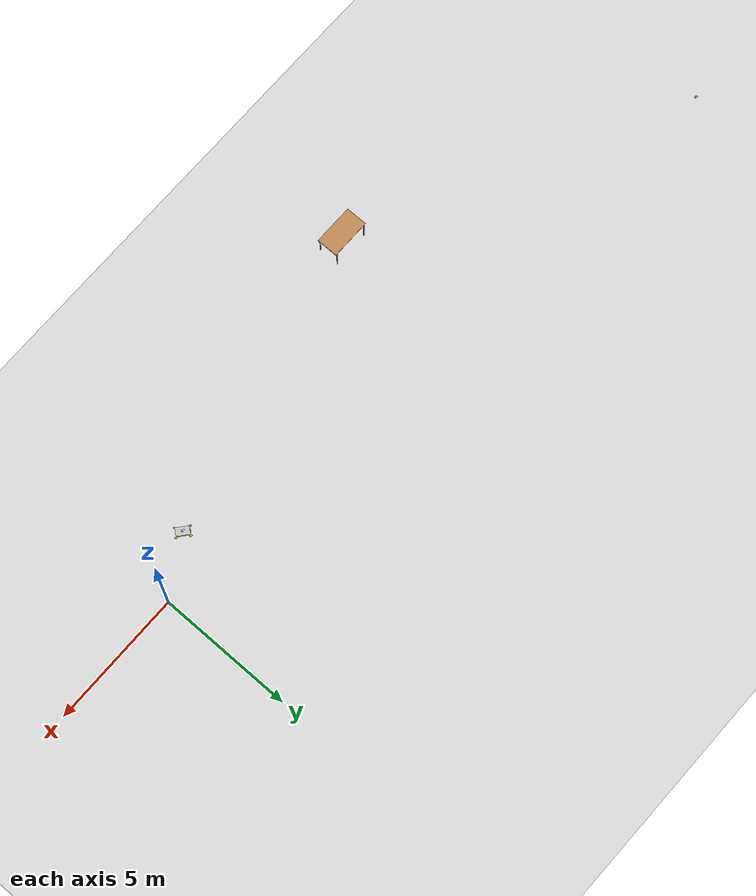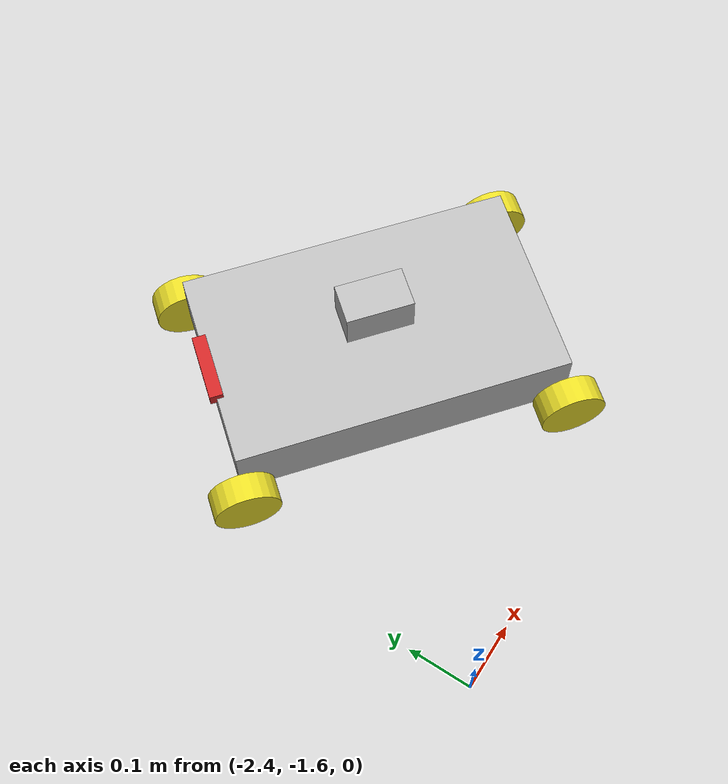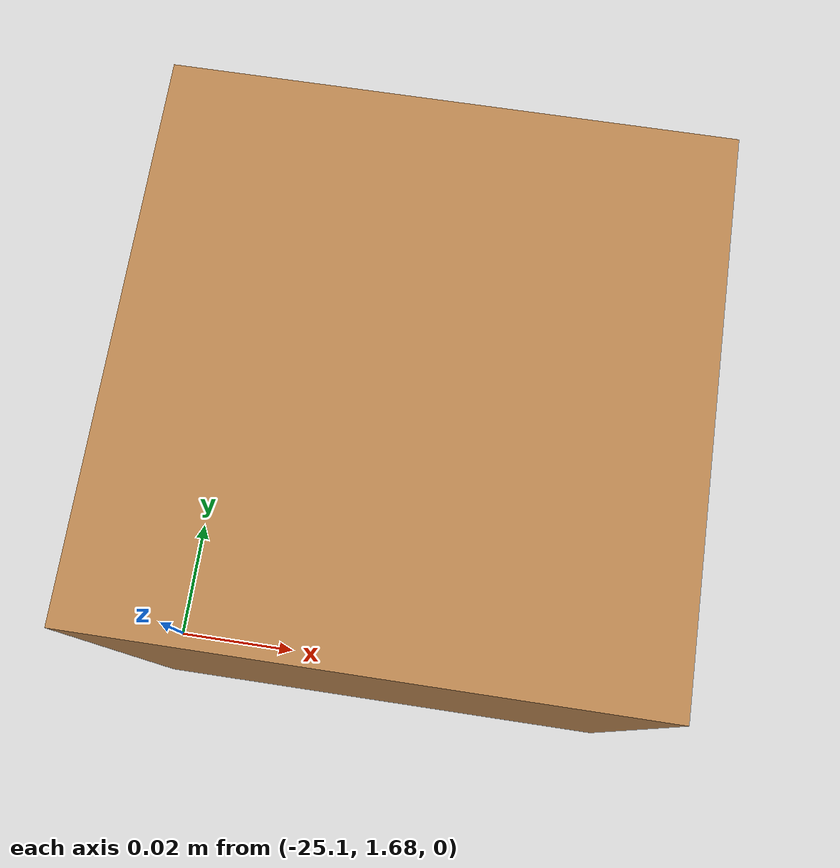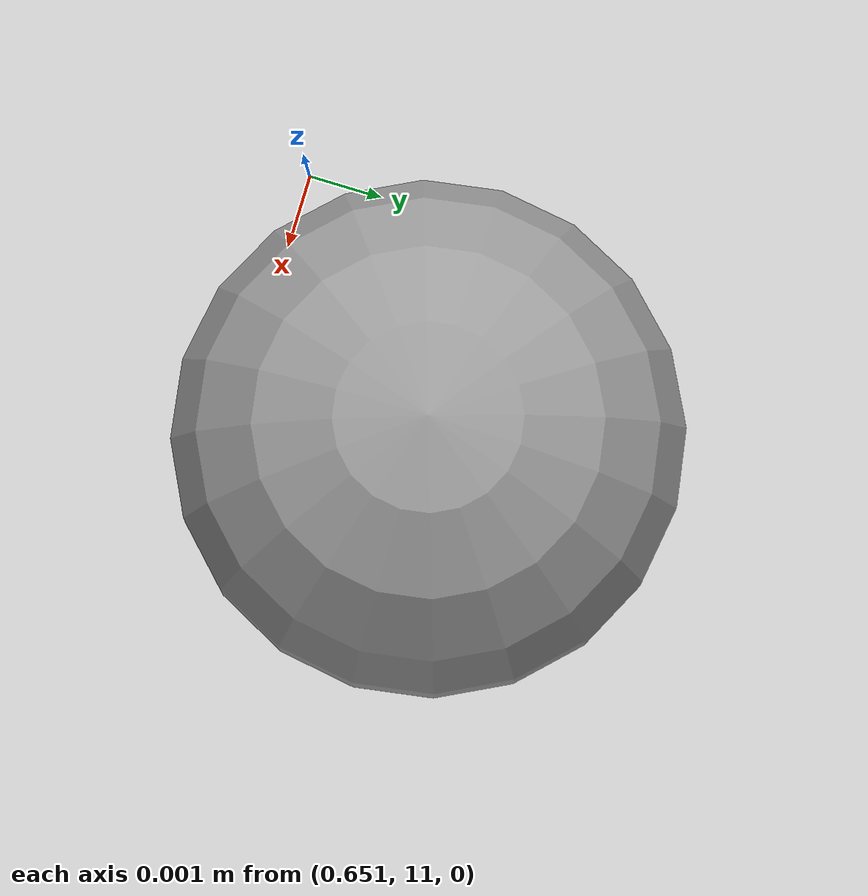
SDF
<sdf version="1.7">
 <world name="default">
  <light name="sun" type="directional">
   <pose>0 0 10 0 -0 0</pose>
   <diffuse>0.8 0.8 0.8 1</diffuse>
   <specular>0.2 0.2 0.2 1</specular>
   <attenuation>
    <range>1000</range>
    <constant>0.9</constant>
    <linear>0.01</linear>
    <quadratic>0.001</quadratic>
   </attenuation>
   <direction>-0.5 0.1 -0.9</direction>
   <spot><inner_angle>0</inner_angle><outer_angle>0</outer_angle><falloff>0</falloff></spot>
  </light>
  <model name="ground_plane">
   <static>1</static>
   <link name="link">
    <collision name="collision">
     <geometry><plane><normal>0 0 1</normal><size>100 100</size></plane></geometry>
     <surface>
      <contact><collide_bitmask>65535</collide_bitmask></contact>
      <friction><ode><mu>100</mu><mu2>50</mu2></ode></friction>
     </surface>
    </collision>
    <visual name="visual">
     <cast_shadows>0</cast_shadows>
     <geometry><plane><normal>0 0 1</normal><size>100 100</size></plane></geometry>
     <material>
      <script><uri>file://media/materials/scripts/gazebo.material</uri><name>Gazebo/Grey</name></script>
     </material>
    </visual>
   </link>
  </model>
  <gravity>0 0 -9.8</gravity>
  <magnetic_field>6e-06 2.3e-05 -4.2e-05</magnetic_field>
  <atmosphere type="adiabatic"/>
  <physics type="ode">
   <max_step_size>0.001</max_step_size>
   <real_time_factor>1</real_time_factor>
   <real_time_update_rate>1000</real_time_update_rate>
  </physics>
  <scene><ambient>0.4 0.4 0.4 1</ambient><background>0.7 0.7 0.7 1</background><shadows>1</shadows></scene>
  <audio><device>default</device></audio>
  <spherical_coordinates>
   <surface_model>EARTH_WGS84</surface_model>
   <latitude_deg>0</latitude_deg>
   <longitude_deg>0</longitude_deg>
   <elevation>0</elevation>
   <heading_deg>0</heading_deg>
  </spherical_coordinates>
  <model name="robot">
   <link name="base_link">
    <inertial>
     <pose>0.02 0 0.0128 0 -0 0</pose>
     <mass>1.25</mass>
     <inertia>
      <ixx>0.0231319</ixx>
      <ixy>1.51081e-20</ixy>
      <ixz>-0.00093</ixz>
      <iyy>0.0353519</iyy>
      <iyz>4.27978e-36</iyz>
      <izz>0.0146167</izz>
     </inertia>
    </inertial>
    <collision name="base_link_collision"><geometry><box><size>0.5 0.3 0.1</size></box></geometry></collision>
    <collision name="base_link_fixed_joint_lump__camera_link_collision_1">
     <pose>0.25 0 0.05 0 -0 0</pose>
     <geometry><box><size>0.02 0.1 0.02</size></box></geometry>
    </collision>
    <collision name="base_link_fixed_joint_lump__imu_link_collision_2">
     <pose>0 0 0.02 0 -0 0</pose>
     <geometry><box><size>0.02 0.02 0.02</size></box></geometry>
    </collision>
    <visual name="base_link_visual"><geometry><box><size>0.5 0.3 0.1</size></box></geometry></visual>
    <visual name="base_link_fixed_joint_lump__camera_link_visual_1">
     <pose>0.25 0 0.05 0 -0 0</pose>
     <geometry><box><size>0.02 0.1 0.02</size></box></geometry>
     <material>
      <script><name>Gazebo/Red</name><uri>file://media/materials/scripts/gazebo.material</uri></script>
     </material>
    </visual>
    <visual name="base_link_fixed_joint_lump__imu_link_visual_2">
     <pose>0 0 0.02 0 -0 0</pose>
     <geometry><box><size>0.02 0.02 0.02</size></box></geometry>
     <material>
      <script><name>Gazebo/Black</name><uri>file://media/materials/scripts/gazebo.material</uri></script>
     </material>
    </visual>
    <visual name="base_link_fixed_joint_lump__livox_link_visual_3">
     <pose>0 0 0.1 0 -0 0</pose>
     <geometry><box><size>0.1 0.06 0.06</size></box></geometry>
    </visual>
    <sensor name="imu_sensor" type="imu">
     <plugin name="imu_plugin" filename="libgazebo_ros_imu_sensor.so">
      <ros><namespace>/</namespace><remapping>~/out:=imu_raw</remapping></ros>
      <initial_orientation_as_reference>0</initial_orientation_as_reference>
     </plugin>
     <update_rate>200</update_rate>
     <always_on>1</always_on>
     <imu>
      <angular_velocity>
       <x>
        <noise type="gaussian">
         <mean>0</mean>
         <stddev>0</stddev>
         <bias_mean>0</bias_mean>
         <bias_stddev>0</bias_stddev>
        </noise>
       </x>
       <y>
        <noise type="gaussian">
         <mean>0</mean>
         <stddev>0</stddev>
         <bias_mean>0</bias_mean>
         <bias_stddev>0</bias_stddev>
        </noise>
       </y>
       <z>
        <noise type="gaussian">
         <mean>0</mean>
         <stddev>0</stddev>
         <bias_mean>0</bias_mean>
         <bias_stddev>0</bias_stddev>
        </noise>
       </z>
      </angular_velocity>
      <linear_acceleration>
       <x>
        <noise type="gaussian">
         <mean>0</mean>
         <stddev>0</stddev>
         <bias_mean>0</bias_mean>
         <bias_stddev>0</bias_stddev>
        </noise>
       </x>
       <y>
        <noise type="gaussian">
         <mean>0</mean>
         <stddev>0</stddev>
         <bias_mean>0</bias_mean>
         <bias_stddev>0</bias_stddev>
        </noise>
       </y>
       <z>
        <noise type="gaussian">
         <mean>0</mean>
         <stddev>0</stddev>
         <bias_mean>0</bias_mean>
         <bias_stddev>0</bias_stddev>
        </noise>
       </z>
      </linear_acceleration>
     </imu>
     <pose>0 0 0.02 0 -0 0</pose>
    </sensor>
    <sensor name="livox_link" type="ray">
     <visualize>1</visualize>
     <update_rate>10</update_rate>
     <plugin name="livox_link_plugin" filename="libros2_livox.so">
      <ray>
       <scan>
        <horizontal>
         <samples>100</samples>
         <resolution>1</resolution>
         <min_angle>0</min_angle>
         <max_angle>6.2831852</max_angle>
        </horizontal>
        <vertical>
         <samples>360</samples>
         <resolution>1</resolution>
         <min_angle>-0.12601276984444446</min_angle>
         <max_angle>0.9637707965111111</max_angle>
        </vertical>
       </scan>
       <range><min>0.1</min><max>200.0</max><resolution>0.002</resolution></range>
       <noise><type>gaussian</type><mean>0.0</mean><stddev>0.002</stddev></noise>
      </ray>
      <visualize>0</visualize>
      <samples>30000</samples>
      <downsample>1</downsample>
      <csv_file_name>/home/akun/workspace/CAR/1_URDF_ws/install/ros2_livox_simulation/share/ros2_livox_simulation/scan_mode/mid360.csv</csv_file_name>
      <topic>livox</topic>
     </plugin>
     <pose>0 0 0.1 0 -0 0</pose>
     <ray>
      <scan>
       <horizontal>
        <samples>640</samples>
        <resolution>1</resolution>
        <min_angle>0</min_angle>
        <max_angle>0</max_angle>
       </horizontal>
       <vertical><samples>1</samples><min_angle>0</min_angle><max_angle>0</max_angle></vertical>
      </scan>
      <range><min>0</min><max>0</max></range>
     </ray>
    </sensor>
   </link>
   <joint name="wheel_1_joint" type="revolute">
    <pose relative_to="base_link">0.25 0.17 -0.05 0 -0 0</pose>
    <parent>base_link</parent>
    <child>wheel_1_link</child>
    <axis>
     <xyz>0 1 0</xyz>
     <limit><lower>-100</lower><upper>100</upper><effort>100</effort><velocity>10</velocity></limit>
     <dynamics><spring_reference>0</spring_reference><spring_stiffness>0</spring_stiffness></dynamics>
    </axis>
   </joint>
   <link name="wheel_1_link">
    <pose relative_to="wheel_1_joint">0 0 0 0 -0 0</pose>
    <inertial>
     <mass>0.05</mass>
     <inertia>
      <ixx>3.79167e-05</ixx>
      <ixy>0</ixy>
      <ixz>0</ixz>
      <iyy>3.79167e-05</iyy>
      <iyz>0</iyz>
      <izz>6.25e-05</izz>
     </inertia>
    </inertial>
    <collision name="wheel_1_link_collision">
     <pose>0 0 0 1.57079 -0 0</pose>
     <geometry><cylinder><length>0.04</length><radius>0.05</radius></cylinder></geometry>
     <surface>
      <contact><ode><kp>1e+09</kp><kd>1</kd></ode></contact>
      <friction><ode><mu>0</mu><mu2>0</mu2></ode></friction>
     </surface>
    </collision>
    <visual name="wheel_1_link_visual">
     <pose>0 0 0 1.57079 -0 0</pose>
     <geometry><cylinder><length>0.04</length><radius>0.05</radius></cylinder></geometry>
     <material>
      <script><name>Gazebo/Yellow</name><uri>file://media/materials/scripts/gazebo.material</uri></script>
     </material>
    </visual>
   </link>
   <joint name="wheel_2_joint" type="revolute">
    <pose relative_to="base_link">-0.25 0.17 -0.05 0 -0 0</pose>
    <parent>base_link</parent>
    <child>wheel_2_link</child>
    <axis>
     <xyz>0 1 0</xyz>
     <limit><effort>100</effort><velocity>10</velocity><lower>-1e+16</lower><upper>1e+16</upper></limit>
     <dynamics><spring_reference>0</spring_reference><spring_stiffness>0</spring_stiffness></dynamics>
    </axis>
   </joint>
   <link name="wheel_2_link">
    <pose relative_to="wheel_2_joint">0 0 0 0 -0 0</pose>
    <inertial>
     <mass>0.05</mass>
     <inertia>
      <ixx>3.79167e-05</ixx>
      <ixy>0</ixy>
      <ixz>0</ixz>
      <iyy>3.79167e-05</iyy>
      <iyz>0</iyz>
      <izz>6.25e-05</izz>
     </inertia>
    </inertial>
    <collision name="wheel_2_link_collision">
     <pose>0 0 0 1.57079 -0 0</pose>
     <geometry><cylinder><length>0.04</length><radius>0.05</radius></cylinder></geometry>
     <surface>
      <contact><ode><kp>1e+09</kp><kd>1</kd></ode></contact>
      <friction><ode><mu>5</mu><mu2>5</mu2></ode></friction>
     </surface>
    </collision>
    <visual name="wheel_2_link_visual">
     <pose>0 0 0 1.57079 -0 0</pose>
     <geometry><cylinder><length>0.04</length><radius>0.05</radius></cylinder></geometry>
     <material>
      <script><name>Gazebo/Yellow</name><uri>file://media/materials/scripts/gazebo.material</uri></script>
     </material>
    </visual>
   </link>
   <joint name="wheel_3_joint" type="revolute">
    <pose relative_to="base_link">0.25 -0.17 -0.05 0 -0 0</pose>
    <parent>base_link</parent>
    <child>wheel_3_link</child>
    <axis>
     <xyz>0 1 0</xyz>
     <limit><lower>-100</lower><upper>100</upper><effort>100</effort><velocity>10</velocity></limit>
     <dynamics><spring_reference>0</spring_reference><spring_stiffness>0</spring_stiffness></dynamics>
    </axis>
   </joint>
   <link name="wheel_3_link">
    <pose relative_to="wheel_3_joint">0 0 0 0 -0 0</pose>
    <inertial>
     <mass>0.05</mass>
     <inertia>
      <ixx>3.79167e-05</ixx>
      <ixy>0</ixy>
      <ixz>0</ixz>
      <iyy>3.79167e-05</iyy>
      <iyz>0</iyz>
      <izz>6.25e-05</izz>
     </inertia>
    </inertial>
    <collision name="wheel_3_link_collision">
     <pose>0 0 0 1.57079 -0 0</pose>
     <geometry><cylinder><length>0.04</length><radius>0.05</radius></cylinder></geometry>
     <surface>
      <contact><ode><kp>1e+09</kp><kd>1</kd></ode></contact>
      <friction><ode><mu>0</mu><mu2>0</mu2></ode></friction>
     </surface>
    </collision>
    <visual name="wheel_3_link_visual">
     <pose>0 0 0 1.57079 -0 0</pose>
     <geometry><cylinder><length>0.04</length><radius>0.05</radius></cylinder></geometry>
     <material>
      <script><name>Gazebo/Yellow</name><uri>file://media/materials/scripts/gazebo.material</uri></script>
     </material>
    </visual>
   </link>
   <joint name="wheel_4_joint" type="revolute">
    <pose relative_to="base_link">-0.25 -0.17 -0.05 0 -0 0</pose>
    <parent>base_link</parent>
    <child>wheel_4_link</child>
    <axis>
     <xyz>0 1 0</xyz>
     <limit><effort>100</effort><velocity>10</velocity><lower>-1e+16</lower><upper>1e+16</upper></limit>
     <dynamics><spring_reference>0</spring_reference><spring_stiffness>0</spring_stiffness></dynamics>
    </axis>
   </joint>
   <link name="wheel_4_link">
    <pose relative_to="wheel_4_joint">0 0 0 0 -0 0</pose>
    <inertial>
     <mass>0.05</mass>
     <inertia>
      <ixx>3.79167e-05</ixx>
      <ixy>0</ixy>
      <ixz>0</ixz>
      <iyy>3.79167e-05</iyy>
      <iyz>0</iyz>
      <izz>6.25e-05</izz>
     </inertia>
    </inertial>
    <collision name="wheel_4_link_collision">
     <pose>0 0 0 1.57079 -0 0</pose>
     <geometry><cylinder><length>0.04</length><radius>0.05</radius></cylinder></geometry>
     <surface>
      <contact><ode><kp>1e+09</kp><kd>1</kd></ode></contact>
      <friction><ode><mu>5</mu><mu2>5</mu2></ode></friction>
     </surface>
    </collision>
    <visual name="wheel_4_link_visual">
     <pose>0 0 0 1.57079 -0 0</pose>
     <geometry><cylinder><length>0.04</length><radius>0.05</radius></cylinder></geometry>
     <material>
      <script><name>Gazebo/Yellow</name><uri>file://media/materials/scripts/gazebo.material</uri></script>
     </material>
    </visual>
   </link>
   <static>0</static>
   <plugin name="diff_drive" filename="libgazebo_ros_diff_drive.so">
    <ros><namespace>/</namespace><remapping>cmd_vel:=cmd_vel</remapping><remapping>odom:=odom</remapping></ros>
    <update_rate>30</update_rate>
    <left_joint>wheel_2_joint</left_joint>
    <right_joint>wheel_4_joint</right_joint>
    <wheel_separation>0.3</wheel_separation>
    <wheel_diameter>0.10</wheel_diameter>
    <max_wheel_torque>1000</max_wheel_torque>
    <max_wheel_acceleration>5.0</max_wheel_acceleration>
    <publish_odom>1</publish_odom>
    <publish_odom_tf>1</publish_odom_tf>
    <publish_wheel_tf>1</publish_wheel_tf>
    <odometry_frame>odom</odometry_frame>
    <robot_base_frame>base_link</robot_base_frame>
   </plugin>
   <pose>-2.05072 -1.22487 0.099995 -9e-06 -1.4e-05 2.439</pose>
  </model>
  <model name="table">
   <static>1</static>
   <link name="link">
    <collision name="surface">
     <pose>0 0 1 0 -0 0</pose>
     <geometry><box><size>1.5 0.8 0.03</size></box></geometry>
     <surface><friction><ode><mu>0.6</mu><mu2>0.6</mu2></ode></friction></surface>
    </collision>
    <visual name="visual1">
     <pose>0 0 1 0 -0 0</pose>
     <geometry><box><size>1.5 0.8 0.03</size></box></geometry>
     <material>
      <script><uri>file://media/materials/scripts/gazebo.material</uri><name>Gazebo/Wood</name></script>
     </material>
    </visual>
    <collision name="front_left_leg">
     <pose>0.68 0.38 0.5 0 -0 0</pose>
     <geometry><cylinder><radius>0.02</radius><length>1</length></cylinder></geometry>
    </collision>
    <visual name="front_left_leg">
     <pose>0.68 0.38 0.5 0 -0 0</pose>
     <geometry><cylinder><radius>0.02</radius><length>1</length></cylinder></geometry>
     <material>
      <script><uri>file://media/materials/scripts/gazebo.material</uri><name>Gazebo/Grey</name></script>
     </material>
    </visual>
    <collision name="front_right_leg">
     <pose>0.68 -0.38 0.5 0 -0 0</pose>
     <geometry><cylinder><radius>0.02</radius><length>1</length></cylinder></geometry>
    </collision>
    <visual name="front_right_leg">
     <pose>0.68 -0.38 0.5 0 -0 0</pose>
     <geometry><cylinder><radius>0.02</radius><length>1</length></cylinder></geometry>
     <material>
      <script><uri>file://media/materials/scripts/gazebo.material</uri><name>Gazebo/Grey</name></script>
     </material>
    </visual>
    <collision name="back_right_leg">
     <pose>-0.68 -0.38 0.5 0 -0 0</pose>
     <geometry><cylinder><radius>0.02</radius><length>1</length></cylinder></geometry>
    </collision>
    <visual name="back_right_leg">
     <pose>-0.68 -0.38 0.5 0 -0 0</pose>
     <geometry><cylinder><radius>0.02</radius><length>1</length></cylinder></geometry>
     <material>
      <script><uri>file://media/materials/scripts/gazebo.material</uri><name>Gazebo/Grey</name></script>
     </material>
    </visual>
    <collision name="back_left_leg">
     <pose>-0.68 0.38 0.5 0 -0 0</pose>
     <geometry><cylinder><radius>0.02</radius><length>1</length></cylinder></geometry>
    </collision>
    <visual name="back_left_leg">
     <pose>-0.68 0.38 0.5 0 -0 0</pose>
     <geometry><cylinder><radius>0.02</radius><length>1</length></cylinder></geometry>
     <material>
      <script><uri>file://media/materials/scripts/gazebo.material</uri><name>Gazebo/Grey</name></script>
     </material>
    </visual>
   </link>
   <pose>-13.0625 -3.95815 0 0 -0 0</pose>
  </model>
  <model name="wood_cube_7_5cm">
   <link name="link">
    <pose>0 0 0.0375 0 -0 0</pose>
    <inertial>
     <mass>0.2249</mass>
     <inertia>
      <ixx>0.000210844</ixx>
      <ixy>0</ixy>
      <ixz>0</ixz>
      <iyy>0.000210844</iyy>
      <iyz>0</iyz>
      <izz>0.000210844</izz>
     </inertia>
    </inertial>
    <collision name="collision">
     <geometry><box><size>0.075 0.075 0.075</size></box></geometry>
     <surface>
      <contact>
       <poissons_ratio>0.347</poissons_ratio>
       <elastic_modulus>8.8e+09</elastic_modulus>
       <ode><kp>100000</kp><kd>100</kd><max_vel>100</max_vel><min_depth>0.001</min_depth></ode>
      </contact>
      <friction>
       <torsional>
        <coefficient>1</coefficient>
        <use_patch_radius>0</use_patch_radius>
        <surface_radius>0.01</surface_radius>
       </torsional>
      </friction>
     </surface>
    </collision>
    <visual name="visual">
     <geometry><box><size>0.075 0.075 0.075</size></box></geometry>
     <material>
      <script><uri>file://media/materials/scripts/gazebo.material</uri><name>Gazebo/Wood</name></script>
     </material>
    </visual>
   </link>
   <pose>-25.063 1.71113 -0.001005 0 -0 0</pose>
  </model>
  <model name="ball_bearing">
   <link name="link">
    <pose>0 0 0.003 0 -0 0</pose>
    <inertial>
     <mass>0.0011</mass>
     <inertia>
      <ixx>3.96e-09</ixx>
      <ixy>0</ixy>
      <ixz>0</ixz>
      <iyy>3.96e-09</iyy>
      <iyz>0</iyz>
      <izz>3.96e-09</izz>
     </inertia>
    </inertial>
    <collision name="collision">
     <geometry><sphere><radius>0.003</radius></sphere></geometry>
     <surface>
      <contact>
       <poissons_ratio>0.305</poissons_ratio>
       <elastic_modulus>2e+11</elastic_modulus>
       <ode><kp>100000</kp><kd>100</kd><max_vel>100</max_vel><min_depth>0.001</min_depth></ode>
      </contact>
      <friction>
       <torsional>
        <coefficient>1</coefficient>
        <use_patch_radius>0</use_patch_radius>
        <surface_radius>0.01</surface_radius>
       </torsional>
      </friction>
     </surface>
    </collision>
    <visual name="visual">
     <geometry><sphere><radius>0.003</radius></sphere></geometry>
     <material>
      <script><uri>file://media/materials/scripts/gazebo.material</uri><name>Gazebo/Grey</name></script>
     </material>
    </visual>
    <velocity_decay><linear>0</linear><angular>0.005</angular></velocity_decay>
   </link>
   <pose>0.654094 11.0026 -0.001 0 -0 0</pose>
  </model>
 </world>
</sdf>
